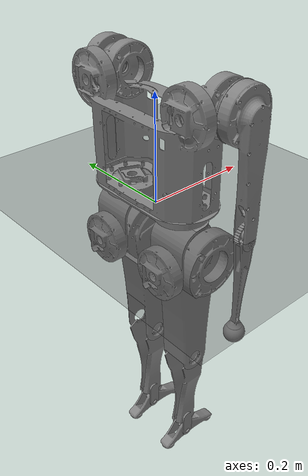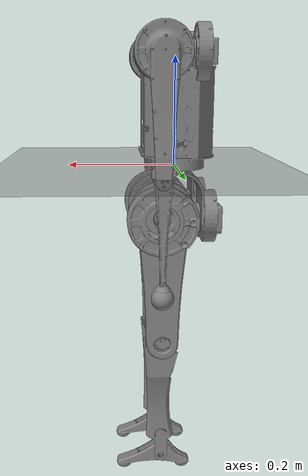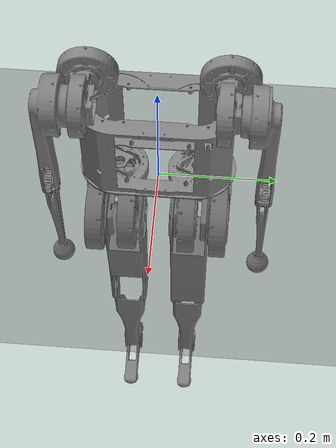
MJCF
<mujoco model="humanoid">
    <compiler angle="radian" meshdir="./meshes_zidong/" />
    <size njmax="500" nconmax="100" />
    <option timestep="0.0001" iterations="50" gravity='0 0 -9.81'/>
    <visual>
        <quality shadowsize='4096'/>
        <map znear='0.05'/>
    </visual>
    <asset>
        <texture type="skybox" builtin="gradient" rgb1="0.4 0.6 0.8" width="128" height="128"/>
        <texture name="plane" type="2d" builtin="checker" rgb1="0.2 0.2 0.2" rgb2="0.3 0.3 0.3" width="500" height="500" />
        <texture name="plane2" type="2d" builtin="checker" rgb1="0.3 0.3 0.3" rgb2="0.7 0.7 0.7" width="500" height="500" />
        <material name="plane" reflectance="0.0" texture="plane" texrepeat="1 1" texuniform="true"/>
        <material name="plane2" reflectance="0.0" texture="plane2" texrepeat="1 1" texuniform="true"/>
        <mesh name="Body" file="Body.stl" />
        <mesh name="HipRz" file="HipRz.stl" />
        <mesh name="HipRx" file="HipRx.stl" />
        <mesh name="Thigh" file="Thigh.stl" />
        <mesh name="LowerLeg3_drawing" file="LowerLeg3_drawing.stl" />
        <mesh name="foot_drawing" file="foot_drawing.stl" />
        <mesh name="ShoulderRx" file="ShoulderRx.stl" />
        <mesh name="UpperArm" file="UpperArm.stl" />
        <mesh name="ForeArm2" file="ForeArm2.stl" />
        <hfield name="terrain" file="haviz.png" size="5 5 0.3 0.1"/>
    </asset>
    <worldbody>
        <light directional="false" cutoff="60" exponent="1" diffuse=".5 .5 .5" specular=".1 .1 .1" pos="0.5 0.1 0.8" dir="-0.5 -0.1 -0.8"/>
        <geom name="floor" pos="0  0  0" size="5 5 5" type="plane" material="plane" condim="3" conaffinity="1"/>
        <body name="torso">
            <inertial pos="0.0 0.0 0.15" quat="1 0 0 0" mass="2.21129"  diaginertia="0.3006167 0.23837 0.09690467"/>
            <joint type="slide" axis="1 0 0" limited="false"/>
            <joint type="slide" axis="0 1 0" limited="false"/>
            <joint type="slide" axis="0 0 1" limited="false"/>
            <joint type="ball" limited="false"/>
            <geom type="mesh" contype="1" conaffinity="0" group="1" mesh="Body" />
            <body name="R_HipRz" pos="0 -0.075 0">
                <inertial pos="0 0 -0.04293" quat="0.5 0.5 0.5 0.5" mass="0.3" diaginertia="0.01391 0.01355 0.003735" />
                <joint name="torso_to_R_HipRz" pos="0 0 0" axis="0 0 1" limited="true" range="-3 3" />
                <geom type="mesh" contype="1" conaffinity="0" group="1" mesh="HipRz" />
                <body name="R_HipRx" pos="-0.041 0 -0.0885">
                    <inertial pos="0 0 -0.01" quat="0.5 0.5 0.5 0.5" mass="0.3" diaginertia="0.01391 0.01355 0.003735" />
                    <joint name="R_HipRz_to_R_HipRx" pos="0 0 0" axis="1 0 0" limited="true" range="-3 3" />
                    <geom type="mesh" contype="1" conaffinity="0" group="1" mesh="HipRx" />
                    <body name="R_Thigh" pos="0.065 0 0">
                        <inertial pos="0 0 -0.1" quat="0.5 0.5 0.5 0.5" mass="1" diaginertia="0.01391 0.01355 0.003735" />
                        <joint name="R_HipRx_to_R_Thigh" pos="0 0 0" axis="0 1 0" limited="true" range="-3 3" />
                        <geom type="mesh" contype="1" conaffinity="0" group="1" mesh="Thigh" />
                        <body name="R_Shank" pos="0 0.017875 -0.247">
                            <inertial pos="-0.03416 -0.00075 -0.01" quat="0.5 0.5 0.5 0.5" mass="0.7" diaginertia="0.01391 0.01355 0.003735" />
                            <joint name="R_Knee" pos="0 0 0" axis="0 1 0" limited="true" range="0 3" />
                            <geom type="mesh" contype="1" conaffinity="0" group="1" mesh="LowerLeg3_drawing" />
                            <body name="R_Foot" pos="0 0 -0.247">
                                <inertial pos="0 0 -0.01" quat="0.5 0.5 0.5 0.5" mass="0.3" diaginertia="0.01391 0.01355 0.003735" />
                                <joint name="R_Ankle" pos="0 0 0" axis="0 1 0" limited="true" range="-3 3" />
                                <geom type="mesh" contype="1" conaffinity="0" group="1" mesh="foot_drawing" />
                            </body>
                        </body>
                    </body>
                </body>
            </body>
            <body name="L_HipRz" pos="0 0.075 0">
                <inertial pos="0 0 -0.04293" quat="0.5 0.5 0.5 0.5" mass="0.3" diaginertia="0.01391 0.01355 0.003735" />
                <joint name="torso_to_L_HipRz" pos="0 0 0" axis="0 0 1" limited="true" range="-3 3" />
                <geom type="mesh" contype="1" conaffinity="0" group="1" mesh="HipRz" />
                <body name="L_HipRx" pos="-0.041 0 -0.0885">
                    <inertial pos="0 0 -0.01" quat="0.5 0.5 0.5 0.5" mass="0.3" diaginertia="0.01391 0.01355 0.003735" />
                    <joint name="L_HipRz_to_L_HipRx" pos="0 0 0" axis="1 0 0" limited="true" range="-3 3" />
                    <geom quat="3.26795e-07 1 0 0" type="mesh" contype="1" conaffinity="0" group="1" mesh="HipRx" />
                    <body name="L_Thigh" pos="0.065 0 0">
                        <inertial pos="0 0 -0.1" quat="0.5 0.5 0.5 0.5" mass="1" diaginertia="0.01391 0.01355 0.003735" />
                        <joint name="L_HipRx_to_L_Thigh" pos="0 0 0" axis="0 1 0" limited="true" range="-3 3" />
                        <geom quat="3.26795e-07 0 0 1" type="mesh" contype="1" conaffinity="0" group="1" mesh="Thigh" />
                        <body name="L_Shank" pos="0 -0.017875 -0.247">
                            <inertial pos="-0.03416 -0.00075 -0.01" quat="0.5 0.5 0.5 0.5" mass="0.7" diaginertia="0.01391 0.01355 0.003735" />
                            <joint name="L_Knee" pos="0 0 0" axis="0 1 0" limited="true" range="0 3" />
                            <geom type="mesh" contype="1" conaffinity="0" group="1" mesh="LowerLeg3_drawing" />
                            <body name="L_Foot" pos="0 0 -0.247">
                                <inertial pos="0 0 -0.01" quat="0.5 0.5 0.5 0.5" mass="0.3" diaginertia="0.01391 0.01355 0.003735" />
                                <joint name="L_Ankle" pos="0 0 0" axis="0 1 0" limited="true" range="-3 3" />
                                <geom type="mesh" contype="1" conaffinity="0" group="1" mesh="foot_drawing" />
                            </body>
                        </body>
                    </body>
                </body>
            </body>
            <body name="R_ShoulderRx" pos="-0.0215 -0.1115 0.202">
                <inertial pos="0.01 0 0" quat="0.5 0.5 0.5 0.5" mass="0.3" diaginertia="0.01391 0.01355 0.003735" />
                <joint name="torso_to_R_ShoulderRx" pos="0 0 0" axis="1 0 0" limited="true" range="-3 3" />
                <geom type="mesh" contype="1" conaffinity="0" group="1" mesh="ShoulderRx" />
                <body name="R_UpperArm" pos="0.0545 0 0">
                    <inertial pos="0 0 -0.09" quat="0.5 0.5 0.5 0.5" mass="0.37" diaginertia="0.01391 0.01355 0.003735" />
                    <joint name="R_ShoulderRx_to_R_UpperArm" pos="0 0 0" axis="0 1 0" limited="true" range="-3 3" />
                    <geom type="mesh" contype="1" conaffinity="0" group="1" mesh="UpperArm" />
                    <body name="R_ForeArm" pos="0 -0.068 -0.195">
                        <inertial pos="0 0 -0.04" quat="0.5 0.5 0.5 0.5" mass="0.1" diaginertia="0.01391 0.01355 0.003735" />
                        <joint name="R_UpperArm_to_R_ForeArm" pos="0 0 0" axis="0 1 0" limited="true" range="-3 3" />
                        <geom type="mesh" contype="1" conaffinity="0" group="1" mesh="ForeArm2" />
                    </body>
                </body>
            </body>
            <body name="L_ShoulderRx" pos="-0.0215 0.1115 0.202">
                <inertial pos="0.01 0 0" quat="0.5 0.5 0.5 0.5" mass="0.3" diaginertia="0.01391 0.01355 0.003735" />
                <joint name="torso_to_L_ShoulderRx" pos="0 0 0" axis="1 0 0" limited="true" range="-3 3" />
                <geom type="mesh" contype="1" conaffinity="0" group="1" mesh="ShoulderRx" />
                <body name="L_UpperArm" pos="0.0545 0 0">
                    <inertial pos="0 0 -0.09" quat="0.5 0.5 0.5 0.5" mass="0.37" diaginertia="0.01391 0.01355 0.003735" />
                    <joint name="L_ShoulderRx_to_L_UpperArm" pos="0 0 0" axis="0 1 0" limited="true" range="-3 3" />
                    <geom quat="3.26795e-07 0 0 1" type="mesh" contype="1" conaffinity="0" group="1" mesh="UpperArm" />
                    <body name="L_ForeArm" pos="0 0.068 -0.195">
                        <inertial pos="0 0 -0.04" quat="0.5 0.5 0.5 0.5" mass="0.1" diaginertia="0.01391 0.01355 0.003735" />
                        <joint name="L_UpperArm_to_L_ForeArm" pos="0 0 0" axis="0 1 0" limited="true" range="-3 3" />
                        <geom type="mesh" contype="1" conaffinity="0" group="1" mesh="ForeArm2" />
                    </body>
                </body>
            </body>
        </body>
    </worldbody>
    <actuator>
        <motor name="torso_to_R_HipRz"  joint="torso_to_R_HipRz" gear="1" ctrllimited="true" ctrlrange="-33.6 33.6"/>
        <motor name="R_HipRz_to_R_HipRx"  joint="R_HipRz_to_R_HipRx" gear="1" ctrllimited="true" ctrlrange="-33.6 33.6"/>
        <motor name="R_HipRx_to_R_Thigh"  joint="R_HipRx_to_R_Thigh" gear="1" ctrllimited="true" ctrlrange="-33.6 33.6"/>
        <motor name="R_Knee"  joint="R_Knee" gear="1" ctrllimited="true" ctrlrange="-33.6 33.6"/>
        <motor name="R_Ankle"  joint="R_Ankle" gear="1" ctrllimited="true" ctrlrange="-33.6 33.6"/>
        <motor name="torso_to_L_HipRz"  joint="torso_to_L_HipRz" gear="1" ctrllimited="true" ctrlrange="-33.6 33.6"/>
        <motor name="L_HipRz_to_L_HipRx"  joint="L_HipRz_to_L_HipRx" gear="1" ctrllimited="true" ctrlrange="-33.6 33.6"/>
        <motor name="L_HipRx_to_L_Thigh"  joint="L_HipRx_to_L_Thigh" gear="1" ctrllimited="true" ctrlrange="-33.6 33.6"/>
        <motor name="L_Knee"  joint="L_Knee" gear="1" ctrllimited="true" ctrlrange="-33.6 33.6"/>
        <motor name="L_Ankle"  joint="L_Ankle" gear="1" ctrllimited="true" ctrlrange="-33.6 33.6"/>
        <motor name="torso_to_R_ShoulderRx"  joint="torso_to_R_ShoulderRx" gear="1" ctrllimited="true" ctrlrange="-33.6 33.6"/>
        <motor name="R_ShoulderRx_to_R_UpperArm"  joint="R_ShoulderRx_to_R_UpperArm" gear="1" ctrllimited="true" ctrlrange="-33.6 33.6"/>
        <motor name="R_UpperArm_to_R_ForeArm"  joint="R_UpperArm_to_R_ForeArm" gear="1" ctrllimited="true" ctrlrange="-33.6 33.6"/>
        <motor name="torso_to_L_ShoulderRx"  joint="torso_to_L_ShoulderRx" gear="1" ctrllimited="true" ctrlrange="-33.6 33.6"/>
        <motor name="L_ShoulderRx_to_L_UpperArm"  joint="L_ShoulderRx_to_L_UpperArm" gear="1" ctrllimited="true" ctrlrange="-33.6 33.6"/>
        <motor name="L_UpperArm_to_L_ForeArm"  joint="L_UpperArm_to_L_ForeArm" gear="1" ctrllimited="true" ctrlrange="-33.6 33.6"/>
    </actuator>
</mujoco>
